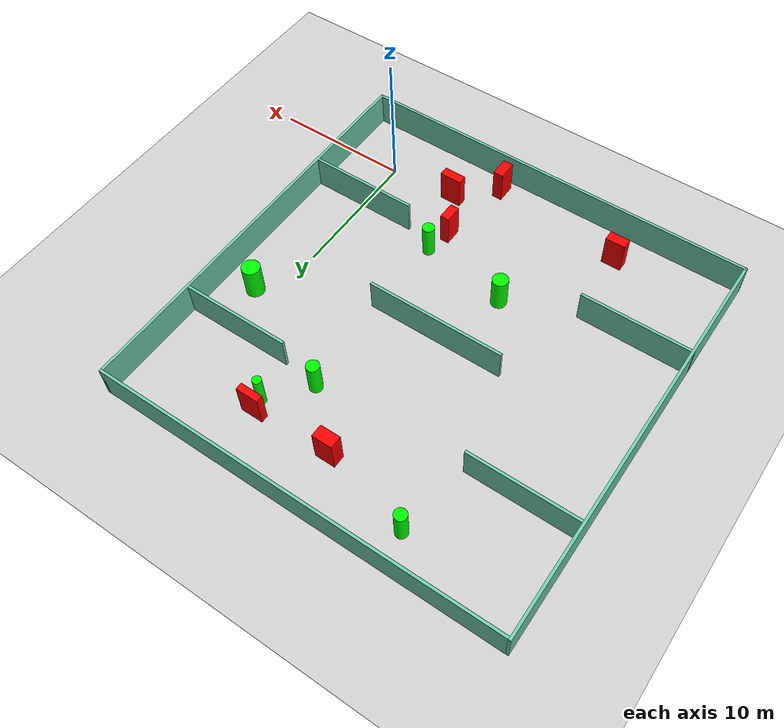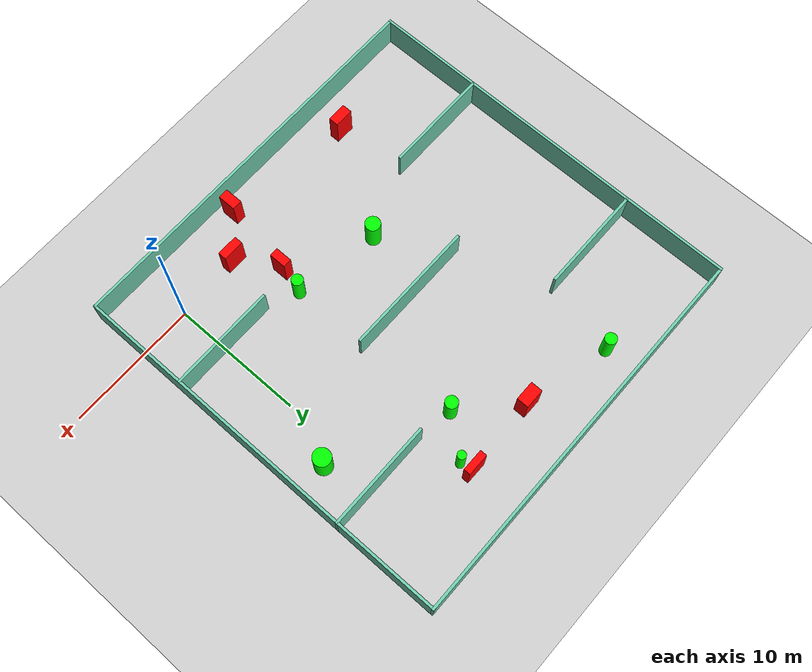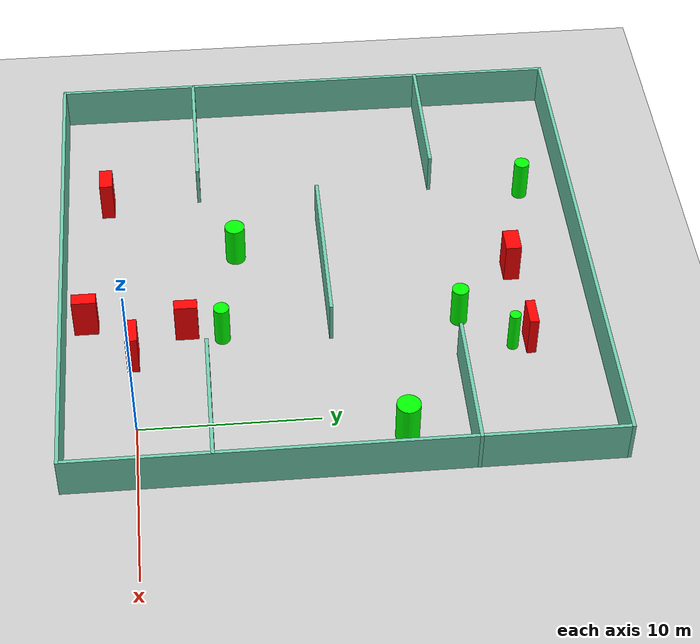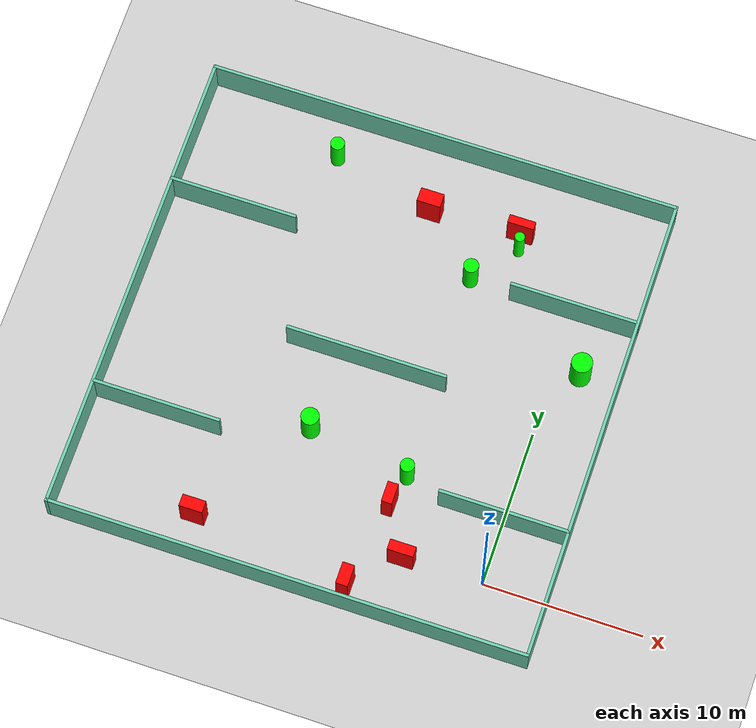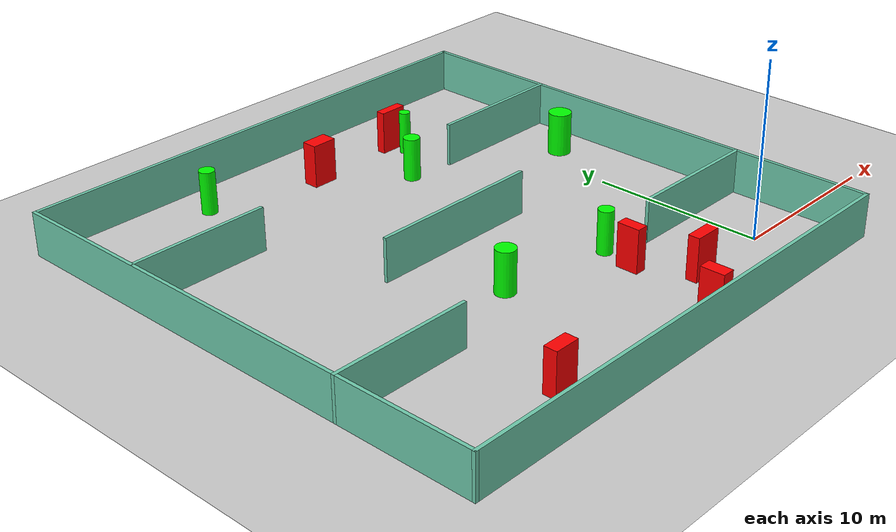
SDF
<sdf version="1.7">
 <world name="default">
  <light name="sun" type="directional">
   <pose>0 0 10 0 -0 0</pose>
   <diffuse>0.8 0.8 0.8 1</diffuse>
   <specular>0.2 0.2 0.2 1</specular>
   <attenuation>
    <range>1000</range>
    <constant>0.9</constant>
    <linear>0.01</linear>
    <quadratic>0.001</quadratic>
   </attenuation>
   <direction>-0.5 0.1 -0.9</direction>
   <spot><inner_angle>0</inner_angle><outer_angle>0</outer_angle><falloff>0</falloff></spot>
  </light>
  <model name="ground_plane">
   <static>1</static>
   <link name="link">
    <collision name="collision">
     <geometry><plane><normal>0 0 1</normal><size>100 100</size></plane></geometry>
     <surface>
      <contact><collide_bitmask>65535</collide_bitmask></contact>
      <friction><ode><mu>100</mu><mu2>50</mu2></ode></friction>
     </surface>
    </collision>
    <visual name="visual">
     <cast_shadows>0</cast_shadows>
     <geometry><plane><normal>0 0 1</normal><size>100 100</size></plane></geometry>
     <material>
      <script><uri>file://media/materials/scripts/gazebo.material</uri><name>Gazebo/Grey</name></script>
     </material>
    </visual>
   </link>
  </model>
  <gravity>0 0 -9.8</gravity>
  <magnetic_field>6e-06 2.3e-05 -4.2e-05</magnetic_field>
  <atmosphere type="adiabatic"/>
  <physics type="ode">
   <max_step_size>0.001</max_step_size>
   <real_time_factor>1</real_time_factor>
   <real_time_update_rate>1000</real_time_update_rate>
  </physics>
  <scene><ambient>0.4 0.4 0.4 1</ambient><background>0.7 0.7 0.7 1</background><shadows>1</shadows></scene>
  <spherical_coordinates>
   <surface_model>EARTH_WGS84</surface_model>
   <latitude_deg>0</latitude_deg>
   <longitude_deg>0</longitude_deg>
   <elevation>0</elevation>
   <heading_deg>0</heading_deg>
  </spherical_coordinates>
  <model name="my_base_walls">
   <link name="Wall_10">
    <collision name="Wall_10_Collision">
     <geometry><box><size>8.2 0.2 2.5</size></box></geometry>
     <pose>0 0 1.25 0 -0 0</pose>
    </collision>
    <visual name="Wall_10_Visual">
     <pose>0 0 1.25 0 -0 0</pose>
     <geometry><box><size>8.2 0.2 2.5</size></box></geometry>
     <material>
      <script><uri>file://media/materials/scripts/gazebo.material</uri><name>Gazebo/Grey</name></script>
      <ambient>0.435294 0.796078 0.67451 1</ambient>
     </material>
     <meta><layer>0</layer></meta>
    </visual>
    <pose>-11 -7 0 0 -0 0</pose>
   </link>
   <link name="Wall_12">
    <collision name="Wall_12_Collision">
     <geometry><box><size>8.2 0.2 2.5</size></box></geometry>
     <pose>0 0 1.25 0 -0 0</pose>
    </collision>
    <visual name="Wall_12_Visual">
     <pose>0 0 1.25 0 -0 0</pose>
     <geometry><box><size>8.2 0.2 2.5</size></box></geometry>
     <material>
      <script><uri>file://media/materials/scripts/gazebo.material</uri><name>Gazebo/Grey</name></script>
      <ambient>0.435294 0.796078 0.67451 1</ambient>
     </material>
     <meta><layer>0</layer></meta>
    </visual>
    <pose>-11 7 0 0 -0 0</pose>
   </link>
   <link name="Wall_14">
    <collision name="Wall_14_Collision">
     <geometry><box><size>8.2 0.2 2.5</size></box></geometry>
     <pose>0 0 1.25 0 -0 0</pose>
    </collision>
    <visual name="Wall_14_Visual">
     <pose>0 0 1.25 0 -0 0</pose>
     <geometry><box><size>8.2 0.2 2.5</size></box></geometry>
     <material>
      <script><uri>file://media/materials/scripts/gazebo.material</uri><name>Gazebo/Grey</name></script>
      <ambient>0.435294 0.796078 0.67451 1</ambient>
     </material>
     <meta><layer>0</layer></meta>
    </visual>
    <pose>11 7 0 0 -0 3.14159</pose>
   </link>
   <link name="Wall_16">
    <collision name="Wall_16_Collision">
     <geometry><box><size>10.2 0.2 2.5</size></box></geometry>
     <pose>0 0 1.25 0 -0 0</pose>
    </collision>
    <visual name="Wall_16_Visual">
     <pose>0 0 1.25 0 -0 0</pose>
     <geometry><box><size>10.2 0.2 2.5</size></box></geometry>
     <material>
      <script><uri>file://media/materials/scripts/gazebo.material</uri><name>Gazebo/Grey</name></script>
      <ambient>0.435294 0.796078 0.67451 1</ambient>
     </material>
     <meta><layer>0</layer></meta>
    </visual>
    <pose>0 0 0 0 -0 3.14159</pose>
   </link>
   <link name="Wall_2">
    <collision name="Wall_2_Collision">
     <geometry><box><size>30.2 0.2 2.5</size></box></geometry>
     <pose>0 0 1.25 0 -0 0</pose>
    </collision>
    <visual name="Wall_2_Visual">
     <pose>0 0 1.25 0 -0 0</pose>
     <geometry><box><size>30.2 0.2 2.5</size></box></geometry>
     <material>
      <script><uri>file://media/materials/scripts/gazebo.material</uri><name>Gazebo/Grey</name></script>
      <ambient>0.435294 0.796078 0.67451 1</ambient>
     </material>
     <meta><layer>0</layer></meta>
    </visual>
    <pose>0 -15 0 0 -0 3.14159</pose>
   </link>
   <link name="Wall_3">
    <collision name="Wall_3_Collision">
     <geometry><box><size>30.2 0.2 2.5</size></box></geometry>
     <pose>0 0 1.25 0 -0 0</pose>
    </collision>
    <visual name="Wall_3_Visual">
     <pose>0 0 1.25 0 -0 0</pose>
     <geometry><box><size>30.2 0.2 2.5</size></box></geometry>
     <material>
      <script><uri>file://media/materials/scripts/gazebo.material</uri><name>Gazebo/Grey</name></script>
      <ambient>0.435294 0.796078 0.67451 1</ambient>
     </material>
     <meta><layer>0</layer></meta>
    </visual>
    <pose>-15 0 0 0 -0 1.5708</pose>
   </link>
   <link name="Wall_4">
    <collision name="Wall_4_Collision">
     <geometry><box><size>30.2 0.2 2.5</size></box></geometry>
     <pose>0 0 1.25 0 -0 0</pose>
    </collision>
    <visual name="Wall_4_Visual">
     <pose>0 0 1.25 0 -0 0</pose>
     <geometry><box><size>30.2 0.2 2.5</size></box></geometry>
     <material>
      <script><uri>file://media/materials/scripts/gazebo.material</uri><name>Gazebo/Grey</name></script>
      <ambient>0.435294 0.796078 0.67451 1</ambient>
     </material>
     <meta><layer>0</layer></meta>
    </visual>
    <pose>0 15 0 0 -0 0</pose>
   </link>
   <link name="Wall_6">
    <collision name="Wall_6_Collision">
     <geometry><box><size>30.2 0.2 2.5</size></box></geometry>
     <pose>0 0 1.25 0 -0 0</pose>
    </collision>
    <visual name="Wall_6_Visual">
     <pose>0 0 1.25 0 -0 0</pose>
     <geometry><box><size>30.2 0.2 2.5</size></box></geometry>
     <material>
      <script><uri>file://media/materials/scripts/gazebo.material</uri><name>Gazebo/Grey</name></script>
      <ambient>0.435294 0.796078 0.67451 1</ambient>
     </material>
     <meta><layer>0</layer></meta>
    </visual>
    <pose>15 0 0 0 -0 1.5708</pose>
   </link>
   <link name="Wall_8">
    <collision name="Wall_8_Collision">
     <geometry><box><size>8.2 0.2 2.5</size></box></geometry>
     <pose>0 0 1.25 0 -0 0</pose>
    </collision>
    <visual name="Wall_8_Visual">
     <pose>0 0 1.25 0 -0 0</pose>
     <geometry><box><size>8.2 0.2 2.5</size></box></geometry>
     <material>
      <script><uri>file://media/materials/scripts/gazebo.material</uri><name>Gazebo/Grey</name></script>
      <ambient>0.435294 0.796078 0.67451 1</ambient>
     </material>
     <meta><layer>0</layer></meta>
    </visual>
    <pose>11 -7 0 0 -0 3.14159</pose>
   </link>
   <static>1</static>
   <pose>-11 11 0 0 -0 0</pose>
  </model>
  <model name="cylinder1">
   <static>1</static>
   <link name="link">
    <inertial>
     <mass>1</mass>
     <inertia><ixx>0.5</ixx><ixy>0</ixy><ixz>0</ixz><iyy>0.5</iyy><iyz>0</iyz><izz>1</izz></inertia>
    </inertial>
    <collision name="collision">
     <geometry><cylinder><radius>0.4715134066423634</radius><length>2.5</length></cylinder></geometry>
    </collision>
    <visual name="visual">
     <geometry><cylinder><radius>0.4715134066423634</radius><length>2.5</length></cylinder></geometry>
     <material>
      <ambient>0 1 0 1</ambient>
      <diffuse>0 1 0 1</diffuse>
      <specular>0.1 0.1 0.1 1</specular>
      <emissive>0 0 0 0</emissive>
     </material>
    </visual>
   </link>
   <pose>-6.7303209439568334 18.33536590952271 1.25 0 0 0</pose>
  </model>
  <model name="cylinder2">
   <static>1</static>
   <link name="link">
    <inertial>
     <mass>1</mass>
     <inertia><ixx>0.5</ixx><ixy>0</ixy><ixz>0</ixz><iyy>0.5</iyy><iyz>0</iyz><izz>1</izz></inertia>
    </inertial>
    <collision name="collision">
     <geometry><cylinder><radius>0.4381593906932285</radius><length>2.5</length></cylinder></geometry>
    </collision>
    <visual name="visual">
     <geometry><cylinder><radius>0.4381593906932285</radius><length>2.5</length></cylinder></geometry>
     <material>
      <ambient>0 1 0 1</ambient>
      <diffuse>0 1 0 1</diffuse>
      <specular>0.1 0.1 0.1 1</specular>
      <emissive>0 0 0 0</emissive>
     </material>
    </visual>
   </link>
   <pose>-6.36157481540922 4.904271570914555 1.25 0 0 0</pose>
  </model>
  <model name="cylinder3">
   <static>1</static>
   <link name="link">
    <inertial>
     <mass>1</mass>
     <inertia><ixx>0.5</ixx><ixy>0</ixy><ixz>0</ixz><iyy>0.5</iyy><iyz>0</iyz><izz>1</izz></inertia>
    </inertial>
    <collision name="collision">
     <geometry><cylinder><radius>0.4422101493529482</radius><length>2.5</length></cylinder></geometry>
    </collision>
    <visual name="visual">
     <geometry><cylinder><radius>0.4422101493529482</radius><length>2.5</length></cylinder></geometry>
     <material>
      <ambient>0 1 0 1</ambient>
      <diffuse>0 1 0 1</diffuse>
      <specular>0.1 0.1 0.1 1</specular>
      <emissive>0 0 0 0</emissive>
     </material>
    </visual>
   </link>
   <pose>-17.077295942334974 23.45667636629671 1.25 0 0 0</pose>
  </model>
  <model name="cylinder4">
   <static>1</static>
   <link name="link">
    <inertial>
     <mass>1</mass>
     <inertia><ixx>0.5</ixx><ixy>0</ixy><ixz>0</ixz><iyy>0.5</iyy><iyz>0</iyz><izz>1</izz></inertia>
    </inertial>
    <collision name="collision">
     <geometry><cylinder><radius>0.6604170507158021</radius><length>2.5</length></cylinder></geometry>
    </collision>
    <visual name="visual">
     <geometry><cylinder><radius>0.6604170507158021</radius><length>2.5</length></cylinder></geometry>
     <material>
      <ambient>0 1 0 1</ambient>
      <diffuse>0 1 0 1</diffuse>
      <specular>0.1 0.1 0.1 1</specular>
      <emissive>0 0 0 0</emissive>
     </material>
    </visual>
   </link>
   <pose>1.557709300216242 14.46068616770458 1.25 0 0 0</pose>
  </model>
  <model name="cylinder5">
   <static>1</static>
   <link name="link">
    <inertial>
     <mass>1</mass>
     <inertia><ixx>0.5</ixx><ixy>0</ixy><ixz>0</ixz><iyy>0.5</iyy><iyz>0</iyz><izz>1</izz></inertia>
    </inertial>
    <collision name="collision">
     <geometry><cylinder><radius>0.3172331628730101</radius><length>2.5</length></cylinder></geometry>
    </collision>
    <visual name="visual">
     <geometry><cylinder><radius>0.3172331628730101</radius><length>2.5</length></cylinder></geometry>
     <material>
      <ambient>0 1 0 1</ambient>
      <diffuse>0 1 0 1</diffuse>
      <specular>0.1 0.1 0.1 1</specular>
      <emissive>0 0 0 0</emissive>
     </material>
    </visual>
   </link>
   <pose>-4.492152195535866 21.09555221201121 1.25 0 0 0</pose>
  </model>
  <model name="cylinder6">
   <static>1</static>
   <link name="link">
    <inertial>
     <mass>1</mass>
     <inertia><ixx>0.5</ixx><ixy>0</ixy><ixz>0</ixz><iyy>0.5</iyy><iyz>0</iyz><izz>1</izz></inertia>
    </inertial>
    <collision name="collision">
     <geometry><cylinder><radius>0.5703486101414706</radius><length>2.5</length></cylinder></geometry>
    </collision>
    <visual name="visual">
     <geometry><cylinder><radius>0.5703486101414706</radius><length>2.5</length></cylinder></geometry>
     <material>
      <ambient>0 1 0 1</ambient>
      <diffuse>0 1 0 1</diffuse>
      <specular>0.1 0.1 0.1 1</specular>
      <emissive>0 0 0 0</emissive>
     </material>
    </visual>
   </link>
   <pose>-12.870272566639446 5.970997357871905 1.25 0 0 0</pose>
  </model>
  <model name="box1">
   <static>1</static>
   <link name="link">
    <inertial>
     <mass>1</mass>
     <inertia><ixx>0.083</ixx><ixy>0</ixy><ixz>0</ixz><iyy>0.083</iyy><iyz>0</iyz><izz>0.083</izz></inertia>
    </inertial>
    <collision name="collision">
     <geometry><box><size>1.6677757085242986 0.5225245797601716 2.5</size></box></geometry>
    </collision>
    <visual name="visual">
     <geometry><box><size>1.6677757085242986 0.5225245797601716 2.5</size></box></geometry>
     <material>
      <ambient>1 0 0 1</ambient>
      <diffuse>1 0 0 1</diffuse>
      <specular>0.1 0.1 0.1 1</specular>
      <emissive>0 0 0 0</emissive>
     </material>
    </visual>
    <sensor name="my_contact" type="contact">
     <contact><collision>box_collision</collision><topic>__default_topic__</topic></contact>
    </sensor>
   </link>
   <pose>-4.688220538141886 22.058855096235728 1.25 0 0 0</pose>
  </model>
  <model name="box2">
   <static>1</static>
   <link name="link">
    <inertial>
     <mass>1</mass>
     <inertia><ixx>0.083</ixx><ixy>0</ixy><ixz>0</ixz><iyy>0.083</iyy><iyz>0</iyz><izz>0.083</izz></inertia>
    </inertial>
    <collision name="collision">
     <geometry><box><size>1.6239283295873743 0.664037664930908 2.5</size></box></geometry>
    </collision>
    <visual name="visual">
     <geometry><box><size>1.6239283295873743 0.664037664930908 2.5</size></box></geometry>
     <material>
      <ambient>1 0 0 1</ambient>
      <diffuse>1 0 0 1</diffuse>
      <specular>0.1 0.1 0.1 1</specular>
      <emissive>0 0 0 0</emissive>
     </material>
    </visual>
    <sensor name="my_contact" type="contact">
     <contact><collision>box_collision</collision><topic>__default_topic__</topic></contact>
    </sensor>
   </link>
   <pose>-5.046990255667531 -0.12078828261183494 1.25 0 0 0</pose>
  </model>
  <model name="box3">
   <static>1</static>
   <link name="link">
    <inertial>
     <mass>1</mass>
     <inertia><ixx>0.083</ixx><ixy>0</ixy><ixz>0</ixz><iyy>0.083</iyy><iyz>0</iyz><izz>0.083</izz></inertia>
    </inertial>
    <collision name="collision">
     <geometry><box><size>1.4981249546918693 0.8984301374479318 2.5</size></box></geometry>
    </collision>
    <visual name="visual">
     <geometry><box><size>1.4981249546918693 0.8984301374479318 2.5</size></box></geometry>
     <material>
      <ambient>1 0 0 1</ambient>
      <diffuse>1 0 0 1</diffuse>
      <specular>0.1 0.1 0.1 1</specular>
      <emissive>0 0 0 0</emissive>
     </material>
    </visual>
    <sensor name="my_contact" type="contact">
     <contact><collision>box_collision</collision><topic>__default_topic__</topic></contact>
    </sensor>
   </link>
   <pose>-10.485249562916845 21.83492353181018 1.25 0 0 0</pose>
  </model>
  <model name="box4">
   <static>1</static>
   <link name="link">
    <inertial>
     <mass>1</mass>
     <inertia><ixx>0.083</ixx><ixy>0</ixy><ixz>0</ixz><iyy>0.083</iyy><iyz>0</iyz><izz>0.083</izz></inertia>
    </inertial>
    <collision name="collision">
     <geometry><box><size>0.6654038475740297 1.307951890304237 2.5</size></box></geometry>
    </collision>
    <visual name="visual">
     <geometry><box><size>0.6654038475740297 1.307951890304237 2.5</size></box></geometry>
     <material>
      <ambient>1 0 0 1</ambient>
      <diffuse>1 0 0 1</diffuse>
      <specular>0.1 0.1 0.1 1</specular>
      <emissive>0 0 0 0</emissive>
     </material>
    </visual>
    <sensor name="my_contact" type="contact">
     <contact><collision>box_collision</collision><topic>__default_topic__</topic></contact>
    </sensor>
   </link>
   <pose>-6.805295965411386 2.9298556099758564 1.25 0 0 0</pose>
  </model>
  <model name="box5">
   <static>1</static>
   <link name="link">
    <inertial>
     <mass>1</mass>
     <inertia><ixx>0.083</ixx><ixy>0</ixy><ixz>0</ixz><iyy>0.083</iyy><iyz>0</iyz><izz>0.083</izz></inertia>
    </inertial>
    <collision name="collision">
     <geometry><box><size>0.7538895053885857 1.3799031732696236 2.5</size></box></geometry>
    </collision>
    <visual name="visual">
     <geometry><box><size>0.7538895053885857 1.3799031732696236 2.5</size></box></geometry>
     <material>
      <ambient>1 0 0 1</ambient>
      <diffuse>1 0 0 1</diffuse>
      <specular>0.1 0.1 0.1 1</specular>
      <emissive>0 0 0 0</emissive>
     </material>
    </visual>
    <sensor name="my_contact" type="contact">
     <contact><collision>box_collision</collision><topic>__default_topic__</topic></contact>
    </sensor>
   </link>
   <pose>-7.695753693381192 -2.7159124278876847 1.25 0 0 0</pose>
  </model>
  <model name="box6">
   <static>1</static>
   <link name="link">
    <inertial>
     <mass>1</mass>
     <inertia><ixx>0.083</ixx><ixy>0</ixy><ixz>0</ixz><iyy>0.083</iyy><iyz>0</iyz><izz>0.083</izz></inertia>
    </inertial>
    <collision name="collision">
     <geometry><box><size>1.4699268168077064 0.7605685667737314 2.5</size></box></geometry>
    </collision>
    <visual name="visual">
     <geometry><box><size>1.4699268168077064 0.7605685667737314 2.5</size></box></geometry>
     <material>
      <ambient>1 0 0 1</ambient>
      <diffuse>1 0 0 1</diffuse>
      <specular>0.1 0.1 0.1 1</specular>
      <emissive>0 0 0 0</emissive>
     </material>
    </visual>
    <sensor name="my_contact" type="contact">
     <contact><collision>box_collision</collision><topic>__default_topic__</topic></contact>
    </sensor>
   </link>
   <pose>-17.694186019614087 -1.4589277702901566 1.25 0 0 0</pose>
  </model>
 </world>
</sdf>
